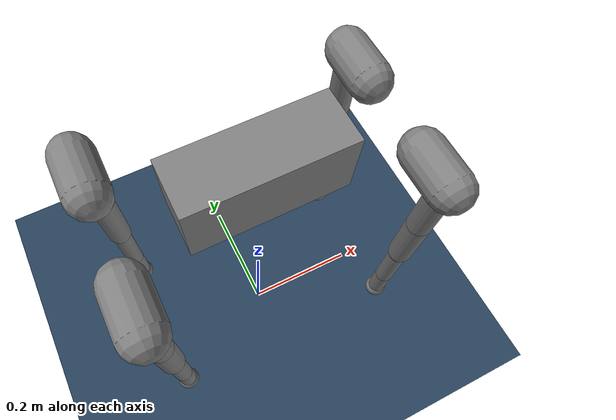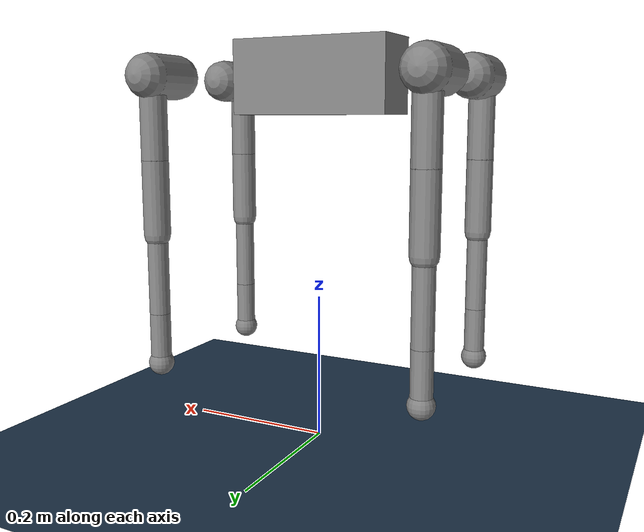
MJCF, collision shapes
<mujoco model="mini_cheetah scene">
    <include file="mini_cheetah.xml"/>
    <statistic center="0 0 0.1" extent="0.8"/>

    <visual>
        <headlight diffuse="0.6 0.6 0.6" ambient="0.3 0.3 0.3" specular="0 0 0"/>
        <rgba haze="0.15 0.25 0.35 1"/>
        <global azimuth="120" elevation="-20"/>
    </visual>

    <asset>
        <texture type="skybox" builtin="gradient" rgb1="0.3 0.5 0.7" rgb2="0 0 0" width="512" height="3072"/>
        <texture type="2d" name="groundplane" builtin="checker" mark="edge" rgb1="0.2 0.3 0.4" rgb2="0.1 0.2 0.3"
        markrgb="0.8 0.8 0.8" width="300" height="300"/>
        <material name="groundplane" texture="groundplane" texuniform="true" texrepeat="5 5" reflectance="0.2"/>
    </asset>

    <worldbody>
        <light pos="0 0 1.5" dir="0 0 -1" directional="true"/>
        <camera name="default" pos="0.846 -1.465 0.916" xyaxes="0.866 0.500 0.000 -0.171 0.296 0.940"/>
        <geom name="floor" size="0 0 0.05" type="plane" material="groundplane" friction="1.5 0.1 0.05"/>
    </worldbody>

    <keyframe>
        <key name="home" qpos="0 0 0.31 1 0 0 0 0 0.78 -1.53 0 0.78 -1.53 0 0.78 -1.53 0 0.78 -1.53"
        ctrl="0 0.78 -1.53 0 0.78 -1.53 0 0.78 -1.53 0 0.78 -1.53"/>
    </keyframe>
</mujoco>

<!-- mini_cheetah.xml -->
<mujoco model="mini_cheetah">

    <compiler angle="radian" autolimits="true" meshdir="../meshes/"/>

    <option iterations="1" ls_iterations="5">
        <flag eulerdamp="disable"/>
    </option>

    <default>
        <default class="mini">
            <joint damping="3" armature="0.01" frictionloss="0.1"/>

            <position kp="500" forcerange="-40 40"/>

            <default class="visual">
                <geom type="mesh" contype="0" conaffinity="0" group="2" rgba="0.7 0.7 0.7 1"/>
            </default>

            <default class="collision">
                <geom type="capsule" group="3" contype="0" conaffinity="1" friction="0.8 0.02 0.01"/>
                <default class="hip_collision">
                    <geom type="capsule" size="0.03 0.03" quat="1 1 0 0"/>
                </default>
                <default class="thigh1">
                    <geom size="0.018" fromto="0 0 0 0 0 -0.11"/>
                </default>
                <default class="thigh2">
                    <geom size="0.018" fromto="0 0 -0.11 0 0 -0.21"/>
                </default>
                <default class="calf1">
                    <geom size="0.014" fromto="0 0 0 0 0 -0.11"/>
                </default>
                <default class="calf2">
                    <geom size="0.014" fromto="0 0 -0.11 0 0 -0.18"/>
                </default>
                <default class="foot">
                    <geom type="sphere" size="0.0175" pos="0 0 -0.18" condim="6" priority="1" friction="1.0 0.02 0.01" solimp="0.015 1 0.031" solref="0.002 1"/>
                </default>
            </default>

            <default class="abduction">
                <joint axis="1 0 0" damping="4" range="-0.8 0.8"/>
                <position ctrlrange="-0.8 0.8"/>
            </default>

            <default class="hip">
                <joint axis="0 -1 0" damping="4" range="-1.2 4.2"/>
                <position ctrlrange="-1.2 4.2"/>
            </default>

            <default class="knee">
                <joint axis="0 -1 0" damping="5" armature="0.01" range="-2.7 -0.8"/>
                <position ctrlrange="-2.7 -0.8"/>
            </default>
        </default>
    </default>

    <asset>
        <mesh name="mini_body" file="mini_body.stl"/>
        <mesh name="mini_abad" file="mini_abad.stl"/>
        <mesh name="mini_upper_link" file="mini_upper_link.stl"/>
        <mesh name="mini_lower_link" file="mini_lower_link.stl"/>
    </asset>

    <worldbody>
        <body name="body" pos="0 0 0.5" childclass="mini">
            <freejoint/>
            <camera name="track" pos="1.958 -2.348 0.591" xyaxes="0.768 0.641 0.000 -0.101 0.122 0.987" mode="trackcom"/>
            <inertial mass="3.3" pos="0 0 0" diaginertia="0.042 0.036 0.011"/>
            <geom class="visual" mesh="mini_body"/>
            <geom type="box" size="0.11 0.04 0.05" group="3" contype="0" conaffinity="1" friction="0.8 0.02 0.01"/>
            <site name="imu_frame" pos="0 0 0" quat="0 0 0 1"/>
            <body name="abduct_fr" pos="0.19 -0.049 0">

                <joint class="abduction" name="torso_to_abduct_fr_j"/>
                <geom class="visual" mesh="mini_abad" pos="-0.055 0 0" quat="0 0.7071 0.7071 0"/>

                <geom class="hip_collision" pos="0 -0.04 0"/>

                <body name="thigh_fr" pos="0 -0.062 0">
                    <joint class="hip" name="abduct_fr_to_thigh_fr_j"/>
                    <geom class="visual" mesh="mini_upper_link" quat="0.7071 0 -0.7071 0"/>
                    <geom class="thigh1"/>
                    <geom class="thigh2"/>
                    <body name="lower_leg_front_right" pos="0 0 -0.209">
                        <joint class="knee" name="thigh_fr_to_knee_fr_j"/>
                        <geom class="visual" mesh="mini_lower_link" quat="0 0 1 0"/>
                        <geom class="calf1"/>
                        <geom class="calf2"/>
                        <geom class="foot"/>
                        <site name="foot_front_right" pos="0 0 -0.18"/>
                    </body>
                </body>
            </body>

            <body name="abduct_fl" pos="0.19 0.049 0">
                <joint class="abduction" name="torso_to_abduct_fl_j"/>
                <geom class="visual" mesh="mini_abad" pos="-0.055 0 0" quat="0.7071 0 0 -0.7071"/>
                <geom class="hip_collision" pos="0 0.04 0"/>
                <body name="thigh_fl" pos="0 0.062 0">
                    <joint class="hip" name="abduct_fl_to_thigh_fl_j"/>
                    <geom class="visual" mesh="mini_upper_link" quat="0.7071 0 -0.7071 0"/>
                    <geom class="thigh1"/>
                    <geom class="thigh2"/>
                    <body name="lower_leg_front_left" pos="0 0 -0.209">
                        <joint class="knee" name="thigh_fl_to_knee_fl_j"/>
                        <geom class="visual" mesh="mini_lower_link" quat="0 0 1 0"/>
                        <geom class="calf1"/>
                        <geom class="calf2"/>
                        <geom class="foot"/>
                        <site name="foot_front_left" pos="0 0 -0.18"/>
                    </body>
                </body>
            </body>

            <body name="abduct_hr" pos="-0.19 -0.049 0">
                <joint class="abduction" name="torso_to_abduct_hr_j"/>
                <geom class="visual" mesh="mini_abad" pos="0.055 0 0" quat="0.7071 0 0 0.7071"/>
                <geom class="hip_collision" pos="0 -0.04 0"/>
                <body name="thigh_hr" pos="0 -0.062 0">
                    <joint class="hip" name="abduct_hr_to_thigh_hr_j"/>
                    <geom class="visual" mesh="mini_upper_link" quat="0.7071 0 -0.7071 0"/>
                    <geom class="thigh1"/>
                    <geom class="thigh2"/>
                    <body name="lower_leg_hind_right" pos="0 0 -0.209">
                        <joint class="knee" name="thigh_hr_to_knee_hr_j"/>
                        <geom class="visual" mesh="mini_lower_link" quat="0 0 1 0"/>
                        <geom class="calf1"/>
                        <geom class="calf2"/>
                        <geom class="foot"/>
                        <site name="foot_hind_right" pos="0 0 -0.18"/>
                    </body>
                </body>
            </body>

            <body name="abduct_hl" pos="-0.19 0.049 0">
                <joint class="abduction" name="torso_to_abduct_hl_j"/>
                <geom class="visual" mesh="mini_abad" pos="0.055 0 0" quat="0 0.7071 -0.7071 0"/>
                <geom class="hip_collision" pos="0 0.04 0"/>
                <body name="thigh_hl" pos="0 0.062 0">
                    <joint class="hip" name="abduct_hl_to_thigh_hl_j"/>
                    <geom class="visual" mesh="mini_upper_link" quat="0.7071 0 -0.7071 0"/>
                    <geom class="thigh1"/>
                    <geom class="thigh2"/>
                    <body name="lower_leg_hind_left" pos="0 0 -0.209">
                        <joint class="knee" name="thigh_hl_to_knee_hl_j"/>
                        <geom class="visual" mesh="mini_lower_link" quat="0 0 1 0"/>
                        <geom class="calf1"/>
                        <geom class="calf2"/>
                        <geom class="foot"/>
                        <site name="foot_hind_left" pos="0 0 -0.18"/>
                    </body>
                </body>
            </body>
        </body>
    </worldbody>

    <actuator>
        <position class="abduction" joint="torso_to_abduct_fl_j"/>
        <position class="hip"       joint="abduct_fl_to_thigh_fl_j"/>
        <position class="knee"      joint="thigh_fl_to_knee_fl_j"/>
        <position class="abduction" joint="torso_to_abduct_fr_j"/>
        <position class="hip"       joint="abduct_fr_to_thigh_fr_j"/>
        <position class="knee"      joint="thigh_fr_to_knee_fr_j"/>
        <position class="abduction" joint="torso_to_abduct_hl_j"/>
        <position class="hip"       joint="abduct_hl_to_thigh_hl_j"/>
        <position class="knee"      joint="thigh_hl_to_knee_hl_j"/>
        <position class="abduction" joint="torso_to_abduct_hr_j"/>
        <position class="hip"       joint="abduct_hr_to_thigh_hr_j"/>
        <position class="knee"      joint="thigh_hr_to_knee_hr_j"/>
    </actuator>

    <sensor>
        <jointpos joint="torso_to_abduct_fl_j" name="abduction_front_left_pos"/>
        <jointpos joint="abduct_fl_to_thigh_fl_j" name="hip_front_left_pos"/>
        <jointpos joint="thigh_fl_to_knee_fl_j" name="knee_front_left_pos"/>
        <jointpos joint="torso_to_abduct_hl_j" name="abduction_hind_left_pos"/>
        <jointpos joint="abduct_hl_to_thigh_hl_j" name="hip_hind_left_pos"/>
        <jointpos joint="thigh_hl_to_knee_hl_j" name="knee_hind_left_pos"/>
        <jointpos joint="torso_to_abduct_fr_j" name="abduction_front_right_pos"/>
        <jointpos joint="abduct_fr_to_thigh_fr_j" name="hip_front_right_pos"/>
        <jointpos joint="thigh_fr_to_knee_fr_j" name="knee_front_right_pos"/>
        <jointpos joint="torso_to_abduct_hr_j" name="abduction_hind_right_pos"/>
        <jointpos joint="abduct_hr_to_thigh_hr_j" name="hip_hind_right_pos"/>
        <jointpos joint="thigh_hr_to_knee_hr_j" name="knee_hind_right_pos"/>
        <jointvel joint="torso_to_abduct_fl_j" name="abduction_front_left_vel"/>
        <jointvel joint="abduct_fl_to_thigh_fl_j" name="hip_front_left_vel"/>
        <jointvel joint="thigh_fl_to_knee_fl_j" name="knee_front_left_vel"/>
        <jointvel joint="torso_to_abduct_hl_j" name="abduction_hind_left_vel"/>
        <jointvel joint="abduct_hl_to_thigh_hl_j" name="hip_hind_left_vel"/>
        <jointvel joint="thigh_hl_to_knee_hl_j" name="knee_hind_left_vel"/>
        <jointvel joint="torso_to_abduct_fr_j" name="abduction_front_right_vel"/>
        <jointvel joint="abduct_fr_to_thigh_fr_j" name="hip_front_right_vel"/>
        <jointvel joint="thigh_fr_to_knee_fr_j" name="knee_front_right_vel"/>
        <jointvel joint="torso_to_abduct_hr_j" name="abduction_hind_right_vel"/>
        <jointvel joint="abduct_hr_to_thigh_hr_j" name="hip_hind_right_vel"/>
        <jointvel joint="thigh_hr_to_knee_hr_j" name="knee_hind_right_vel"/>

        <gyro site="imu_frame" name="gyro"/>
        <velocimeter site="imu_frame" name="local_linvel"/>
        <accelerometer site="imu_frame" name="accelerometer"/>
        <framepos objtype="site" objname="imu_frame" name="global_position"/>
        <framezaxis objtype="site" objname="imu_frame" name="upvector"/>
        <framelinvel objtype="site" objname="imu_frame" name="global_linvel"/>
        <frameangvel objtype="site" objname="imu_frame" name="global_angvel"/>
        <framequat objtype="site" objname="imu_frame" name="orientation"/>
    </sensor>
</mujoco>
